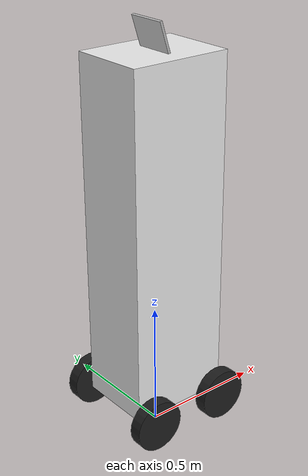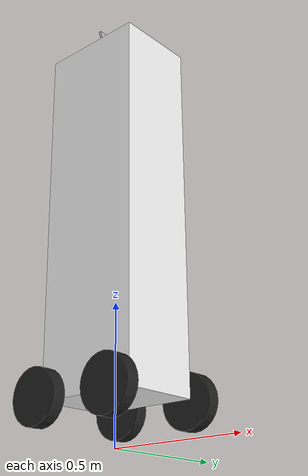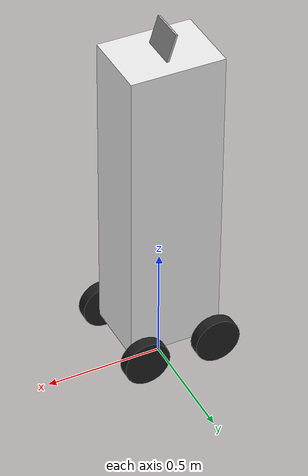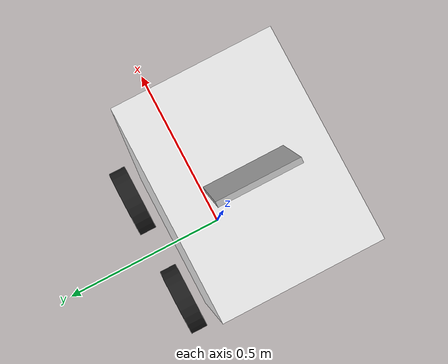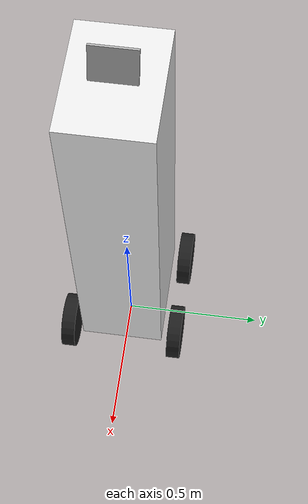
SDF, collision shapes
<?xml version='1.0'?>
<sdf version='1.7'>
  <model name='link_man'>
    <static>false</static>

    <link name='base_link'>
      <pose>0 -0 0.132 -0 -0 -0</pose>
      <gravity>1</gravity>
      <self_collide>0</self_collide>
      <kinematic>0</kinematic>
      <enable_wind>0</enable_wind>
      <inertial>
        <mass>3</mass>
        <inertia>
          <ixx>0</ixx>
          <ixy>0</ixy>
          <ixz>0</ixz>
          <iyy>0</iyy>
          <iyz>0</iyz>
          <izz>0</izz>
        </inertia>
        <pose>0 0 0 0 -0 0</pose>
      </inertial>
      <sensor name='imu_sensor' type='imu'>
        <always_on>1</always_on>
        <update_rate>10</update_rate>
        <plugin name='imu_plugin' filename='libgazebo_ros_imu_sensor.so'>
          <ros>
            <argument>~/out:=imu</argument>
          </ros>
          <frame_name>imu</frame_name>
        </plugin>
        <pose>0 0 0 0 -0 0</pose>
        <imu>
          <angular_velocity>
            <x>
              <noise type='none'/>
            </x>
            <y>
              <noise type='none'/>
            </y>
            <z>
              <noise type='none'/>
            </z>
          </angular_velocity>
          <linear_acceleration>
            <x>
              <noise type='none'/>
            </x>
            <y>
              <noise type='none'/>
            </y>
            <z>
              <noise type='none'/>
            </z>
          </linear_acceleration>
        </imu>
      </sensor>
      <visual name='visual'>
        <pose>0 0 0 1.57 -0 1.57</pose>
        <geometry>
          <mesh>
            <uri>model://Thors_hammer/meshes/Thors_hammer.stl</uri>
          </mesh>
        </geometry>
        <material>
          <lighting>1</lighting>
          <script>
            <uri>file://media/materials/scripts/gazebo.material</uri>
            <name>Gazebo/White</name>
          </script>
          <shader type='vertex'>
            <normal_map>__default__</normal_map>
          </shader>
          <ambient>1 1 1 1</ambient>
          <diffuse>1 1 1 1</diffuse>
          <specular>1 1 1 1</specular>
          <emissive>0 0 0 1</emissive>
        </material>
        <transparency>0</transparency>
        <cast_shadows>0</cast_shadows>
      </visual>
      <collision name='collision'>
        <laser_retro>0</laser_retro>
        <max_contacts>10</max_contacts>
        <pose>0 0 0.7 1.57 -0 1.57</pose>
        <geometry>
          <box>
            <size>0.3 1.35 0.4</size>
          </box>
        </geometry>
        <surface>
          <friction>
            <ode>
              <mu>1</mu>
              <mu2>1</mu2>
              <fdir1>0 0 0</fdir1>
              <slip1>0</slip1>
              <slip2>0</slip2>
            </ode>
            <torsional>
              <coefficient>1</coefficient>
              <patch_radius>0</patch_radius>
              <surface_radius>0</surface_radius>
              <use_patch_radius>1</use_patch_radius>
              <ode>
                <slip>0</slip>
              </ode>
            </torsional>
          </friction>
          <bounce>
            <restitution_coefficient>0</restitution_coefficient>
            <threshold>1e+06</threshold>
          </bounce>
          <contact>
            <collide_without_contact>0</collide_without_contact>
            <collide_without_contact_bitmask>1</collide_without_contact_bitmask>
            <collide_bitmask>1</collide_bitmask>
            <ode>
              <soft_cfm>0</soft_cfm>
              <soft_erp>0.2</soft_erp>
              <kp>1e+13</kp>
              <kd>1</kd>
              <max_vel>0.01</max_vel>
              <min_depth>0</min_depth>
            </ode>
            <bullet>
              <split_impulse>1</split_impulse>
              <split_impulse_penetration_threshold>-0.01</split_impulse_penetration_threshold>
              <soft_cfm>0</soft_cfm>
              <soft_erp>0.2</soft_erp>
              <kp>1e+13</kp>
              <kd>1</kd>
            </bullet>
          </contact>
        </surface>
      </collision>
    </link>

    <link name='camera_link'>
      <gravity>0</gravity>
      <self_collide>0</self_collide>
      <kinematic>0</kinematic>
      <enable_wind>0</enable_wind>
      <pose>0.06 0 1.45 -0 -0 -0</pose>
      <sensor name='camera1' type='camera'>
        <update_rate>30</update_rate>
        <visualize>0</visualize>
        <camera name='head'>
          <horizontal_fov>1.39626</horizontal_fov>
          <image>
            <width>640</width>
            <height>480</height>
            <format>R8G8B8</format>
          </image>
          <clip>
            <near>0.02</near>
            <far>50</far>
          </clip>
        </camera>
        <plugin name='camera_controller' filename='libgazebo_ros_camera.so'>
          <alwaysOn>1</alwaysOn>
          <cameraName>camera</cameraName>
          <imageTopicName>image_raw</imageTopicName>
          <cameraInfoTopicName>camera_info</cameraInfoTopicName>
          <frameName>camera_link</frameName>
        </plugin>
      </sensor>
      <inertial>
        <pose>0 0 0 0 -0 0</pose>
        <inertia>
          <ixx>1</ixx>
          <ixy>0</ixy>
          <ixz>0</ixz>
          <iyy>1</iyy>
          <iyz>0</iyz>
          <izz>1</izz>
        </inertia>
        <mass>1</mass>
      </inertial>
    </link>

    <link name='front_left_wheel'>
      <pose>0.16 0.2 0.16 -0 -0 -0</pose>
      <gravity>1</gravity>
      <self_collide>0</self_collide>
      <kinematic>0</kinematic>
      <enable_wind>0</enable_wind>
      <inertial>
        <pose>0 0 0 0 -0 0</pose>
        <mass>0.001</mass>
        <inertia>
          <ixx>0.001</ixx>
          <ixy>0.0001</ixy>
          <ixz>0.0001</ixz>
          <iyy>0.001</iyy>
          <iyz>0.0001</iyz>
          <izz>0.001</izz>
        </inertia>
      </inertial>
      <visual name='front_left_wheel_visual'>
        <pose>0 0 0 0 0 -1.57</pose>
        <geometry>
          <mesh>
            <uri>model://donut/meshes/donut.stl</uri>
          </mesh>
        </geometry>
        <material>
          <lighting>1</lighting>
          <script>
            <uri>file://media/materials/scripts/gazebo.material</uri>
            <name>Gazebo/Black</name>
          </script>
          <shader type='vertex'>
            <normal_map>__default__</normal_map>
          </shader>
          <ambient>0.25 0.25 0.25 1</ambient>
          <diffuse>0.1 0.1 0.1 1</diffuse>
          <specular>0.25 0.25 0.25 1</specular>
          <emissive>0 0 0 1</emissive>
        </material>
        <transparency>0</transparency>
        <cast_shadows>0</cast_shadows>
      </visual>
      <collision name='collision'>
        <laser_retro>0</laser_retro>
        <max_contacts>10</max_contacts>
        <pose>0 0 0 -0 1.57 -1.57</pose>
        <geometry>
          <cylinder>
            <radius>0.1</radius>
            <length>0.05</length>
          </cylinder>
        </geometry>
        <surface>
          <friction>
            <ode>
              <mu>1</mu>
              <mu2>1</mu2>
              <fdir1>0 0 0</fdir1>
              <slip1>0</slip1>
              <slip2>0</slip2>
            </ode>
            <torsional>
              <coefficient>1</coefficient>
              <patch_radius>0</patch_radius>
              <surface_radius>0</surface_radius>
              <use_patch_radius>1</use_patch_radius>
              <ode>
                <slip>0</slip>
              </ode>
            </torsional>
          </friction>
          <bounce>
            <restitution_coefficient>0</restitution_coefficient>
            <threshold>1e+06</threshold>
          </bounce>
          <contact>
            <collide_without_contact>0</collide_without_contact>
            <collide_without_contact_bitmask>1</collide_without_contact_bitmask>
            <collide_bitmask>1</collide_bitmask>
            <ode>
              <soft_cfm>0</soft_cfm>
              <soft_erp>0.2</soft_erp>
              <kp>1e+13</kp>
              <kd>1</kd>
              <max_vel>0.01</max_vel>
              <min_depth>0</min_depth>
            </ode>
            <bullet>
              <split_impulse>1</split_impulse>
              <split_impulse_penetration_threshold>-0.01</split_impulse_penetration_threshold>
              <soft_cfm>0</soft_cfm>
              <soft_erp>0.2</soft_erp>
              <kp>1e+13</kp>
              <kd>1</kd>
            </bullet>
          </contact>
        </surface>
      </collision>
    </link>

    <link name='front_right_wheel'>
      <pose>0.16 -0.2 0.16 -0 -0 -0</pose>
      <gravity>1</gravity>
      <self_collide>0</self_collide>
      <kinematic>0</kinematic>
      <enable_wind>0</enable_wind>
      <inertial>
        <pose>0 0 0 0 -0 0</pose>
        <mass>0.001</mass>
        <inertia>
          <ixx>0.001</ixx>
          <ixy>0.0001</ixy>
          <ixz>0.0001</ixz>
          <iyy>0.001</iyy>
          <iyz>0.0001</iyz>
          <izz>0.001</izz>
        </inertia>
      </inertial>
      <visual name='front_left_wheel_visual'>
        <pose>0 0 0 0 -0 1.57</pose>
        <geometry>
          <mesh>
            <uri>model://donut/meshes/donut.stl</uri>
          </mesh>
        </geometry>
        <material>
          <lighting>1</lighting>
          <script>
            <uri>file://media/materials/scripts/gazebo.material</uri>
            <name>Gazebo/Black</name>
          </script>
          <shader type='vertex'>
            <normal_map>__default__</normal_map>
          </shader>
          <ambient>0.25 0.25 0.25 1</ambient>
          <diffuse>0.1 0.1 0.1 1</diffuse>
          <specular>0.25 0.25 0.25 1</specular>
          <emissive>0 0 0 1</emissive>
        </material>
        <transparency>0</transparency>
        <cast_shadows>0</cast_shadows>
      </visual>
      <collision name='collision'>
        <laser_retro>0</laser_retro>
        <max_contacts>10</max_contacts>
        <pose>0 0 0 0 1.57 1.57</pose>
        <geometry>
          <cylinder>
            <radius>0.1</radius>
            <length>0.05</length>
          </cylinder>
        </geometry>
        <surface>
          <friction>
            <ode>
              <mu>1</mu>
              <mu2>1</mu2>
              <fdir1>0 0 0</fdir1>
              <slip1>0</slip1>
              <slip2>0</slip2>
            </ode>
            <torsional>
              <coefficient>1</coefficient>
              <patch_radius>0</patch_radius>
              <surface_radius>0</surface_radius>
              <use_patch_radius>1</use_patch_radius>
              <ode>
                <slip>0</slip>
              </ode>
            </torsional>
          </friction>
          <bounce>
            <restitution_coefficient>0</restitution_coefficient>
            <threshold>1e+06</threshold>
          </bounce>
          <contact>
            <collide_without_contact>0</collide_without_contact>
            <collide_without_contact_bitmask>1</collide_without_contact_bitmask>
            <collide_bitmask>1</collide_bitmask>
            <ode>
              <soft_cfm>0</soft_cfm>
              <soft_erp>0.2</soft_erp>
              <kp>1e+13</kp>
              <kd>1</kd>
              <max_vel>0.01</max_vel>
              <min_depth>0</min_depth>
            </ode>
            <bullet>
              <split_impulse>1</split_impulse>
              <split_impulse_penetration_threshold>-0.01</split_impulse_penetration_threshold>
              <soft_cfm>0</soft_cfm>
              <soft_erp>0.2</soft_erp>
              <kp>1e+13</kp>
              <kd>1</kd>
            </bullet>
          </contact>
        </surface>
      </collision>
    </link>

    <link name='monitor_link'>
      <gravity>0</gravity>
      <self_collide>0</self_collide>
      <kinematic>0</kinematic>
      <enable_wind>0</enable_wind>
      <pose>0.01 -0 1.5 1.26 0 1.5707</pose>
      <inertial>
        <pose>0 0 0 0 -0 0</pose>
        <inertia>
          <ixx>1</ixx>
          <ixy>0</ixy>
          <ixz>0</ixz>
          <iyy>1</iyy>
          <iyz>0</iyz>
          <izz>1</izz>
        </inertia>
        <mass>1</mass>
      </inertial>
      <visual name='visual'>
        <geometry>
          <box>
            <size>0.15 0.25 0.01</size>
          </box>
        </geometry>
        <plugin name='display_video_controller' filename='libgazebo_ros_video.so'>
          <ros>
            <remapping>~/image_raw:=/camera1/image_raw</remapping>
          </ros>
          <height>120</height>
          <width>160</width>
        </plugin>
        <material>
          <shader type='pixel'/>
          <emissive>0 0 0 1</emissive>
        </material>
        <pose>0 0 0 0 -0 0</pose>
        <transparency>0</transparency>
        <cast_shadows>0</cast_shadows>
      </visual>
      <collision name='collision'>
        <laser_retro>1</laser_retro>
        <max_contacts>10</max_contacts>
        <pose>0 0 0 0 -0 0</pose>
        <geometry>
          <box>
            <size>0.15 0.25 0.01</size>
          </box>
        </geometry>
        <surface>
          <friction>
            <ode>
              <mu>1</mu>
              <mu2>1</mu2>
              <fdir1>0 0 0</fdir1>
              <slip1>0</slip1>
              <slip2>0</slip2>
            </ode>
            <torsional>
              <coefficient>1</coefficient>
              <patch_radius>0</patch_radius>
              <surface_radius>0</surface_radius>
              <use_patch_radius>1</use_patch_radius>
              <ode>
                <slip>0</slip>
              </ode>
            </torsional>
          </friction>
          <bounce>
            <restitution_coefficient>0</restitution_coefficient>
            <threshold>1e+06</threshold>
          </bounce>
          <contact>
            <collide_without_contact>0</collide_without_contact>
            <collide_without_contact_bitmask>1</collide_without_contact_bitmask>
            <collide_bitmask>1</collide_bitmask>
            <ode>
              <soft_cfm>0</soft_cfm>
              <soft_erp>0.2</soft_erp>
              <kp>1e+13</kp>
              <kd>1</kd>
              <max_vel>0.01</max_vel>
              <min_depth>0</min_depth>
            </ode>
            <bullet>
              <split_impulse>1</split_impulse>
              <split_impulse_penetration_threshold>-0.01</split_impulse_penetration_threshold>
              <soft_cfm>0</soft_cfm>
              <soft_erp>0.2</soft_erp>
              <kp>1e+13</kp>
              <kd>1</kd>
            </bullet>
          </contact>
        </surface>
      </collision>
    </link>
    <link name='rear_left_wheel'>
      <pose>-0.16 0.2 0.16 -0 -0 -0</pose>
      <gravity>1</gravity>
      <self_collide>0</self_collide>
      <kinematic>0</kinematic>
      <enable_wind>0</enable_wind>
      <inertial>
        <pose>0 0 0 0 -0 0</pose>
        <mass>0.001</mass>
        <inertia>
          <ixx>0.001</ixx>
          <ixy>0.0001</ixy>
          <ixz>0.0001</ixz>
          <iyy>0.001</iyy>
          <iyz>0.0001</iyz>
          <izz>0.001</izz>
        </inertia>
      </inertial>
      <visual name='rear_left_wheel_visual'>
        <pose>0 0 0 0 -0 1.5707</pose>
        <geometry>
          <mesh>
            <uri>model://donut/meshes/donut.stl</uri>
          </mesh>
        </geometry>
        <material>
          <lighting>1</lighting>
          <script>
            <uri>file://media/materials/scripts/gazebo.material</uri>
            <name>Gazebo/Black</name>
          </script>
          <shader type='vertex'>
            <normal_map>__default__</normal_map>
          </shader>
          <ambient>0.2 0.2 0.2 1</ambient>
          <diffuse>0.1 0.1 0.1 1</diffuse>
          <specular>0.15 0.15 0.15 1</specular>
          <emissive>0 0 0 1</emissive>
        </material>
        <transparency>0</transparency>
        <cast_shadows>0</cast_shadows>
      </visual>
      <collision name='collision'>
        <laser_retro>0</laser_retro>
        <max_contacts>10</max_contacts>
        <pose>0 0 0 0 1.5707 1.57</pose>
        <geometry>
          <cylinder>
            <radius>0.1</radius>
            <length>0.05</length>
          </cylinder>
        </geometry>
        <surface>
          <friction>
            <ode>
              <mu>1</mu>
              <mu2>1</mu2>
              <fdir1>0 0 0</fdir1>
              <slip1>0</slip1>
              <slip2>0</slip2>
            </ode>
            <torsional>
              <coefficient>1</coefficient>
              <patch_radius>0</patch_radius>
              <surface_radius>0</surface_radius>
              <use_patch_radius>1</use_patch_radius>
              <ode>
                <slip>0</slip>
              </ode>
            </torsional>
          </friction>
          <bounce>
            <restitution_coefficient>0</restitution_coefficient>
            <threshold>1e+06</threshold>
          </bounce>
          <contact>
            <collide_without_contact>0</collide_without_contact>
            <collide_without_contact_bitmask>1</collide_without_contact_bitmask>
            <collide_bitmask>1</collide_bitmask>
            <ode>
              <soft_cfm>0</soft_cfm>
              <soft_erp>0.2</soft_erp>
              <kp>1e+13</kp>
              <kd>1</kd>
              <max_vel>0.01</max_vel>
              <min_depth>0</min_depth>
            </ode>
            <bullet>
              <split_impulse>1</split_impulse>
              <split_impulse_penetration_threshold>-0.01</split_impulse_penetration_threshold>
              <soft_cfm>0</soft_cfm>
              <soft_erp>0.2</soft_erp>
              <kp>1e+13</kp>
              <kd>1</kd>
            </bullet>
          </contact>
        </surface>
      </collision>
    </link>
    <link name='rear_right_wheel'>
      <pose>-0.16 -0.2 0.16 -0 -0 -0</pose>
      <gravity>1</gravity>
      <self_collide>0</self_collide>
      <kinematic>0</kinematic>
      <enable_wind>0</enable_wind>
      <inertial>
        <pose>0 0 0 0 -0 0</pose>
        <mass>0.001</mass>
        <inertia>
          <ixx>0.001</ixx>
          <ixy>0.0001</ixy>
          <ixz>0.0001</ixz>
          <iyy>0.001</iyy>
          <iyz>0.0001</iyz>
          <izz>0.001</izz>
        </inertia>
      </inertial>
      <visual name='rear_left_wheel_visual'>
        <pose>0 0 0 1.5707 0 1.5707</pose>
        <geometry>
          <mesh>
            <uri>model://donut/meshes/donut.stl</uri>
          </mesh>
        </geometry>
        <material>
          <lighting>1</lighting>
          <script>
            <uri>file://media/materials/scripts/gazebo.material</uri>
            <name>Gazebo/Black</name>
          </script>
          <shader type='vertex'>
            <normal_map>__default__</normal_map>
          </shader>
          <ambient>0.25 0.25 0.25 1</ambient>
          <diffuse>0.1 0.1 0.1 1</diffuse>
          <specular>0.25 0.25 0.25 1</specular>
          <emissive>0 0 0 1</emissive>
        </material>
        <transparency>0</transparency>
        <cast_shadows>0</cast_shadows>
      </visual>
      <collision name='collision'>
        <laser_retro>0</laser_retro>
        <max_contacts>10</max_contacts>
        <pose>0 0 0 0 1.57 1.5707</pose>
        <geometry>
          <cylinder>
            <radius>0.1</radius>
            <length>0.05</length>
          </cylinder>
        </geometry>
        <surface>
          <friction>
            <ode>
              <mu>1</mu>
              <mu2>1</mu2>
              <fdir1>0 0 0</fdir1>
              <slip1>0</slip1>
              <slip2>0</slip2>
            </ode>
            <torsional>
              <coefficient>1</coefficient>
              <patch_radius>0</patch_radius>
              <surface_radius>0</surface_radius>
              <use_patch_radius>1</use_patch_radius>
              <ode>
                <slip>0</slip>
              </ode>
            </torsional>
          </friction>
          <bounce>
            <restitution_coefficient>0</restitution_coefficient>
            <threshold>1e+06</threshold>
          </bounce>
          <contact>
            <collide_without_contact>0</collide_without_contact>
            <collide_without_contact_bitmask>1</collide_without_contact_bitmask>
            <collide_bitmask>1</collide_bitmask>
            <ode>
              <soft_cfm>0</soft_cfm>
              <soft_erp>0.2</soft_erp>
              <kp>1e+13</kp>
              <kd>1</kd>
              <max_vel>0.01</max_vel>
              <min_depth>0</min_depth>
            </ode>
            <bullet>
              <split_impulse>1</split_impulse>
              <split_impulse_penetration_threshold>-0.01</split_impulse_penetration_threshold>
              <soft_cfm>0</soft_cfm>
              <soft_erp>0.2</soft_erp>
              <kp>1e+13</kp>
              <kd>1</kd>
            </bullet>
          </contact>
        </surface>
      </collision>
    </link>
    <joint name='camera_joint' type='fixed'>
      <parent>base_link</parent>
      <child>camera_link</child>
      <pose>0 0 1.45 0 -0 0</pose>
      <physics>
        <ode>
          <limit>
            <cfm>0</cfm>
            <erp>0.2</erp>
          </limit>
          <suspension>
            <cfm>0</cfm>
            <erp>0.2</erp>
          </suspension>
        </ode>
      </physics>
    </joint>
    <joint name='front_left_wheel_hinge' type='revolute'>
      <parent>base_link</parent>
      <child>front_left_wheel</child>
      <pose>0 0 0 0 -0 0</pose>
      <axis>
        <xyz>0 1 0</xyz>
        <limit>
          <lower>-1e+16</lower>
          <upper>1e+16</upper>
          <effort>-1</effort>
          <velocity>-1</velocity>
        </limit>
        <dynamics>
          <spring_reference>0</spring_reference>
          <spring_stiffness>0</spring_stiffness>
          <damping>0.1</damping>
          <friction>0.1</friction>
        </dynamics>
      </axis>
      <physics>
        <ode>
          <limit>
            <cfm>0</cfm>
            <erp>0.2</erp>
          </limit>
          <suspension>
            <cfm>0</cfm>
            <erp>0.2</erp>
          </suspension>
        </ode>
      </physics>
    </joint>
    <joint name='front_right_wheel_hinge' type='revolute'>
      <parent>base_link</parent>
      <child>front_right_wheel</child>
      <pose>0 0 0 0 -0 0</pose>
      <axis>
        <xyz>0 1 0</xyz>
        <limit>
          <lower>-1e+16</lower>
          <upper>1e+16</upper>
          <effort>-1</effort>
          <velocity>-1</velocity>
        </limit>
        <dynamics>
          <spring_reference>0</spring_reference>
          <spring_stiffness>0</spring_stiffness>
          <damping>0.1</damping>
          <friction>0.1</friction>
        </dynamics>
      </axis>
      <physics>
        <ode>
          <limit>
            <cfm>0</cfm>
            <erp>0.2</erp>
          </limit>
          <suspension>
            <cfm>0</cfm>
            <erp>0.2</erp>
          </suspension>
        </ode>
      </physics>
    </joint>
    <joint name='monitor_joint' type='fixed'>
      <parent>base_link</parent>
      <child>monitor_link</child>
      <pose>0 0 0 0 -0 0</pose>
      <physics>
        <ode>
          <limit>
            <cfm>0</cfm>
            <erp>0.2</erp>
          </limit>
          <suspension>
            <cfm>0</cfm>
            <erp>0.2</erp>
          </suspension>
        </ode>
      </physics>
    </joint>
    <joint name='rear_left_wheel_hinge' type='revolute'>
      <parent>base_link</parent>
      <child>rear_left_wheel</child>
      <pose>0 0 0 0 -0 0</pose>
      <axis>
        <xyz>0 1 0</xyz>
        <limit>
          <lower>-1e+16</lower>
          <upper>1e+16</upper>
          <effort>-1</effort>
          <velocity>-1</velocity>
        </limit>
        <dynamics>
          <spring_reference>0</spring_reference>
          <spring_stiffness>0</spring_stiffness>
          <damping>0.1</damping>
          <friction>0.1</friction>
        </dynamics>
      </axis>
      <physics>
        <ode>
          <limit>
            <cfm>0</cfm>
            <erp>0.2</erp>
          </limit>
          <suspension>
            <cfm>0</cfm>
            <erp>0.2</erp>
          </suspension>
        </ode>
      </physics>
    </joint>
    <joint name='rear_right_wheel_hinge' type='revolute'>
      <parent>base_link</parent>
      <child>rear_right_wheel</child>
      <pose>0 0 0 0 -0 0</pose>
      <axis>
        <xyz>0 1 0</xyz>
        <limit>
          <lower>-1e+16</lower>
          <upper>1e+16</upper>
          <effort>-1</effort>
          <velocity>-1</velocity>
        </limit>
        <dynamics>
          <spring_reference>0</spring_reference>
          <spring_stiffness>0</spring_stiffness>
          <damping>0.1</damping>
          <friction>0.1</friction>
        </dynamics>
      </axis>
      <physics>
        <ode>
          <limit>
            <cfm>0</cfm>
            <erp>0.2</erp>
          </limit>
          <suspension>
            <cfm>0</cfm>
            <erp>0.2</erp>
          </suspension>
        </ode>
      </physics>
    </joint>
    <static>0</static>
    <allow_auto_disable>1</allow_auto_disable>
    <plugin name='skid_steer_drive' filename='libgazebo_ros_diff_drive.so'>
      <ros/>
      <update_rate>10</update_rate>
      <num_wheel_pairs>2</num_wheel_pairs>
      <left_joint>front_left_wheel_hinge</left_joint>
      <right_joint>front_right_wheel_hinge</right_joint>
      <left_joint>rear_left_wheel_hinge</left_joint>
      <right_joint>rear_right_wheel_hinge</right_joint>
      <wheel_separation>0.35</wheel_separation>
      <wheel_separation>0.35</wheel_separation>
      <wheel_diameter>0.2</wheel_diameter>
      <wheel_diameter>0.2</wheel_diameter>
      <max_wheel_torque>0.5</max_wheel_torque>
      <max_wheel_acceleration>2.5</max_wheel_acceleration>
      <publish_odom>1</publish_odom>
      <publish_odom_tf>1</publish_odom_tf>
      <publish_wheel_tf>1</publish_wheel_tf>
      <odometry_frame>odom</odometry_frame>
      <robot_base_frame>base_link</robot_base_frame>
    </plugin>
  </model>
</sdf>
